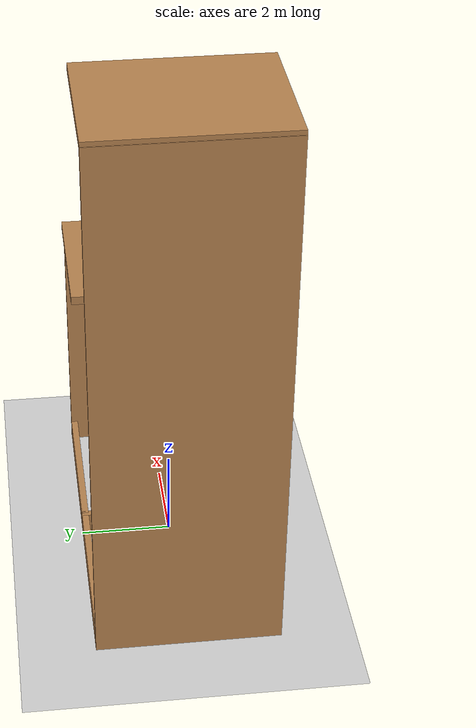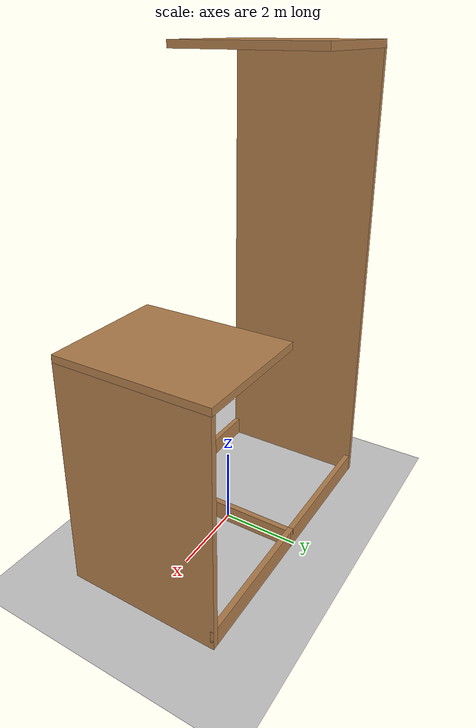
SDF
<sdf version="1.5">
 <world name="default">
  <include><uri>model://ground_plane</uri></include>
  <include><uri>model://asphalt_plane</uri></include>
  <include><uri>model://house</uri><pose>0 0 0 0 0 -1.57</pose></include>
  <include><pose>-2 0 11.9 0 1.57 0</pose><uri>model://cam_high</uri><static>1</static></include>
  <include><pose>2 0 5.9 0 1.57 0</pose><uri>model://cam_low</uri><static>1</static></include>
 </world>
</sdf>

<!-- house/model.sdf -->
<sdf version='1.6'>
  <model name='house'>
    <pose frame=''>-0.665617 0.435676 0 0 -0 0</pose>
    <link name='Wall_119'>
      <collision name='Wall_119_Collision'>
        <geometry>
          <box>
            <size>4.00047 0.15 6</size>
          </box>
        </geometry>
        <pose frame=''>0 0 3 0 -0 0</pose>
      </collision>
      <visual name='Wall_119_Visual'>
        <pose frame=''>0 0 3 0 -0 0</pose>
        <geometry>
          <box>
            <size>4.00047 0.15 6</size>
          </box>
        </geometry>
        <material>
          <script>
            <uri>file://media/materials/scripts/gazebo.material</uri>
            <name>Gazebo/Wood</name>
          </script>
          <ambient>1 1 1 1</ambient>
        </material>
        <meta>
          <layer>0</layer>
        </meta>
      </visual>
      <pose frame=''>-0.000383 3.72832 0 0 -0 0</pose>
    </link>
  <link name='Wall_43'>
      <pose frame=''>-0.036045 2.22823 0 0 -0 0.000117</pose>
      <self_collide>1</self_collide>
      <enable_wind>0</enable_wind>
      <kinematic>0</kinematic>
      <gravity>1</gravity>
      <inertial>
        <mass>0.33717</mass>
        <pose frame=''>0 0 0 0 -0 0</pose>
        <inertia>
          <ixx>0.289156</ixx>
          <ixy>0</ixy>
          <ixz>0</ixz>
          <iyy>0.450568</iyy>
          <iyz>0</iyz>
          <izz>0.737709</izz>
        </inertia>
      </inertial>
      <visual name='Wall_43_Visual'>
        <pose frame=''>0 0 6 0 -0 0</pose>
        <geometry>
          <box>
            <size>4 3.20239 0.189335</size>
          </box>
        </geometry>
        <material>
          <script>
            <uri>file://media/materials/scripts/gazebo.material</uri>
            <name>Gazebo/Wood</name>
          </script>
          <ambient>1 1 1 1</ambient>
          <shader type='vertex'>
            <normal_map>__default__</normal_map>
          </shader>
          <diffuse>1 1 1 1</diffuse>
          <specular>0.2 0.2 0.2 1</specular>
          <emissive>0 0 0 1</emissive>
        </material>
        <meta>
          <layer>0</layer>
        </meta>
        <transparency>0</transparency>
        <cast_shadows>1</cast_shadows>
      </visual>
      <collision name='Wall_43_Collision'>
        <laser_retro>0</laser_retro>
        <max_contacts>10</max_contacts>
        <pose frame=''>0 0 6 0 -0 0</pose>
        <geometry>
          <box>
            <size>4 3.20239 0.189335</size>
          </box>
        </geometry>
        <surface>
          <friction>
            <ode>
              <mu>1</mu>
              <mu2>1</mu2>
              <fdir1>0 0 0</fdir1>
              <slip1>0</slip1>
              <slip2>0</slip2>
            </ode>
            <torsional>
              <coefficient>1</coefficient>
              <patch_radius>0</patch_radius>
              <surface_radius>0</surface_radius>
              <use_patch_radius>1</use_patch_radius>
              <ode>
                <slip>0</slip>
              </ode>
            </torsional>
          </friction>
          <bounce>
            <restitution_coefficient>0</restitution_coefficient>
            <threshold>1e+06</threshold>
          </bounce>
          <contact>
            <collide_without_contact>0</collide_without_contact>
            <collide_without_contact_bitmask>1</collide_without_contact_bitmask>
            <collide_bitmask>1</collide_bitmask>
            <ode>
              <soft_cfm>0</soft_cfm>
              <soft_erp>0.2</soft_erp>
              <kp>1e+13</kp>
              <kd>1</kd>
              <max_vel>0.01</max_vel>
              <min_depth>0</min_depth>
            </ode>
            <bullet>
              <split_impulse>1</split_impulse>
              <split_impulse_penetration_threshold>-0.01</split_impulse_penetration_threshold>
              <soft_cfm>0</soft_cfm>
              <soft_erp>0.2</soft_erp>
              <kp>1e+13</kp>
              <kd>1</kd>
            </bullet>
          </contact>
        </surface>
      </collision>
    </link>
    <link name='Wall_23'>
      <collision name='Wall_23_Collision'>
        <geometry>
          <box>
            <size>4 0.15 12</size>
          </box>
        </geometry>
        <pose frame=''>0 0 6 0 -0 0</pose>
      </collision>
      <visual name='Wall_23_Visual'>
        <pose frame=''>0 0 6 0 -0 0</pose>
        <geometry>
          <box>
            <size>4 0.15 12</size>
          </box>
        </geometry>
        <material>
          <script>
            <uri>file://media/materials/scripts/gazebo.material</uri>
            <name>Gazebo/Wood</name>
          </script>
          <ambient>1 1 1 1</ambient>
        </material>
        <meta>
          <layer>0</layer>
        </meta>
      </visual>
      <pose frame=''>-0.000383 -3.72809 0 0 -0 0.000117</pose>
    </link>
    <link name='Wall_233'>
      <collision name='Wall_233_Collision'>
        <geometry>
           <box>
            <size>4 3.20239 0.189335</size>
          </box>
        </geometry>
        <pose frame=''>0 0 6 0 -0 0</pose>
      </collision>
      <visual name='Wall_233_Visual'>
        <pose frame=''>0 1.55 12 0 -0 0</pose>
        <geometry>
           <box>
            <size>4 3.20239 0.189335</size>
          </box>
        </geometry>
        <material>
          <script>
            <uri>file://media/materials/scripts/gazebo.material</uri>
            <name>Gazebo/Wood</name>
          </script>
          <ambient>1 1 1 1</ambient>
        </material>
        <meta>
          <layer>0</layer>
        </meta>
      </visual>
      <pose frame=''>-0.000383 -3.72809 0 0 -0 0.000117</pose>
    </link>

    <link name='Wall_28'>
      <collision name='Wall_28_Collision'>
        <geometry>
          <box>
            <size>3.75 0.15 0.5</size>
          </box>
        </geometry>
        <pose frame=''>0 0 0.25 0 -0 0</pose>
      </collision>
      <visual name='Wall_28_Visual'>
        <pose frame=''>0 0 0.25 0 -0 0</pose>
        <geometry>
          <box>
            <size>3.75 0.15 0.5</size>
          </box>
        </geometry>
        <material>
          <script>
            <uri>file://media/materials/scripts/gazebo.material</uri>
            <name>Gazebo/Wood</name>
          </script>
          <ambient>1 1 1 1</ambient>
        </material>
        <meta>
          <layer>0</layer>
        </meta>
      </visual>
      <pose frame=''>1.92462 1.86832 0 0 -0 -1.5708</pose>
    </link>
    <link name='Wall_38'>
      <collision name='Wall_38_Collision'>
        <geometry>
          <box>
            <size>4 0.15 0.5</size>
          </box>
        </geometry>
        <pose frame=''>0 0 0.25 0 -0 0</pose>
      </collision>
      <visual name='Wall_38_Visual'>
        <pose frame=''>0 0 0.25 0 -0 0</pose>
        <geometry>
          <box>
            <size>4 0.15 0.5</size>
          </box>
        </geometry>
        <material>
          <script>
            <uri>file://media/materials/scripts/gazebo.material</uri>
            <name>Gazebo/Wood</name>
          </script>
          <ambient>1 1 1 1</ambient>
        </material>
        <meta>
          <layer>0</layer>
        </meta>
      </visual>
      <pose frame=''>1.92562 -1.79568 0 0 -0 1.5708</pose>
    </link>
    <link name='Wall_49'>
      <collision name='Wall_49_Collision'>
        <geometry>
          <box>
            <size>3.99341 0.15 0.5</size>
          </box>
        </geometry>
        <pose frame=''>0 0 0.25 0 -0 0</pose>
      </collision>
      <visual name='Wall_49_Visual'>
        <pose frame=''>0 0 0.25 0 -0 0</pose>
        <geometry>
          <box>
            <size>3.99341 0.15 0.5</size>
          </box>
        </geometry>
        <material>
          <script>
            <uri>file://media/materials/scripts/gazebo.material</uri>
            <name>Gazebo/Wood</name>
          </script>
          <ambient>1 1 1 1</ambient>
        </material>
        <meta>
          <layer>0</layer>
        </meta>
      </visual>
      <pose frame=''>-1.92538 -1.79338 0 0 -0 1.5708</pose>
    </link>
    <link name='Wall_50'>
      <collision name='Wall_50_Collision'>
        <geometry>
          <box>
            <size>4 0.15 0.5</size>
          </box>
        </geometry>
        <pose frame=''>0 0 0.25 0 -0 0</pose>
      </collision>
      <visual name='Wall_50_Visual'>
        <pose frame=''>0 0 0.25 0 -0 0</pose>
        <geometry>
          <box>
            <size>4 0.15 0.5</size>
          </box>
        </geometry>
        <material>
          <script>
            <uri>file://media/materials/scripts/gazebo.material</uri>
            <name>Gazebo/Wood</name>
          </script>
          <ambient>1 1 1 1</ambient>
        </material>
        <meta>
          <layer>0</layer>
        </meta>
      </visual>
      <pose frame=''>-0.000383 0.128324 0 0 -0 0</pose>
    </link>
    <link name='Wall_52'>
      <collision name='Wall_52_Collision'>
        <geometry>
          <box>
            <size>3.75 0.15 0.5</size>
          </box>
        </geometry>
        <pose frame=''>0 0 0.25 0 -0 0</pose>
      </collision>
      <visual name='Wall_52_Visual'>
        <pose frame=''>0 0 0.25 0 -0 0</pose>
        <geometry>
          <box>
            <size>3.75 0.15 0.5</size>
          </box>
        </geometry>
        <material>
          <script>
            <uri>file://media/materials/scripts/gazebo.material</uri>
            <name>Gazebo/Wood</name>
          </script>
          <ambient>1 1 1 1</ambient>
        </material>
        <meta>
          <layer>0</layer>
        </meta>
      </visual>
      <pose frame=''>-1.92538 1.92832 0 0 -0 -1.5708</pose>
    </link>
    <static>1</static>
  </model>
</sdf>

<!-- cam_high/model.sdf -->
<sdf version="1.4">
  <model name="cam_high">
    <link name="sensors_link">
      <inertial>
        <pose>0.01 0.025 0.025 0 -0 0</pose>
        <mass>0.001</mass>
        <inertia>
          <ixx>4.15e-6</ixx>
          <ixy>0</ixy>
          <ixz>0</ixz>
          <iyy>2.407e-6</iyy>
          <iyz>0</iyz>
          <izz>2.407e-6</izz>
        </inertia>
      </inertial>
      <visual name="visual">
        <geometry>
          <box>
            <size>0.02 0.05 0.05</size>
          </box>
        </geometry>
      </visual>
      <sensor name="cam_high" type="camera">
        <camera>
          <horizontal_fov>0.45</horizontal_fov>
	        <vertical_fov>0.46</vertical_fov>
          <image>
            <width>640</width>
            <height>480</height>
          </image>
          <clip>
            <near>0.1</near>
            <far>14</far>
          </clip>
          <noise>
            <type>gaussian</type>
            <mean>0.0</mean>
            <stddev>0.005</stddev>
          </noise>
        </camera>
	<plugin name='camera_controller' filename='libgazebo_ros_camera.so'>
	    <robotNamespace>/</robotNamespace>
	    <cameraName>cam_high</cameraName>
            <imageTopicName>image_raw</imageTopicName>
            <cameraInfoTopicName>camera_info</cameraInfoTopicName>
	    <frameName>cam_high</frameName>
	</plugin>
        <always_on>1</always_on>
        <update_rate>60</update_rate>
        <visualize>true</visualize>
      </sensor>
    </link>
  </model>
</sdf>

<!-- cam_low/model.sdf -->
<sdf version="1.4">
  <model name="cam_low">
    <link name="sensors_link">
      <inertial>
        <pose>0.01 0.025 0.025 0 -0 0</pose>
        <mass>0.001</mass>
        <inertia>
          <ixx>4.15e-6</ixx>
          <ixy>0</ixy>
          <ixz>0</ixz>
          <iyy>2.407e-6</iyy>
          <iyz>0</iyz>
          <izz>2.407e-6</izz>
        </inertia>
      </inertial>
      <visual name="visual">
        <geometry>
          <box>
            <size>0.02 0.05 0.05</size>
          </box>
        </geometry>
      </visual>
      <sensor name="cam_low" type="camera">
        <camera>
          <horizontal_fov>0.8</horizontal_fov>
	        <vertical_fov>0.46</vertical_fov>
          <image>
            <width>640</width>
            <height>480</height>
          </image>
          <clip>
            <near>0.1</near>
            <far>14</far>
          </clip>
          <noise>
            <type>gaussian</type>
            <mean>0.0</mean>
            <stddev>0.005</stddev>
          </noise>
        </camera>
	<plugin name='camera_controller' filename='libgazebo_ros_camera.so'>
	    <robotNamespace>/</robotNamespace>
	    <cameraName>cam_low</cameraName>
            <imageTopicName>image_raw</imageTopicName>
            <cameraInfoTopicName>camera_info</cameraInfoTopicName>
	    <frameName>cam_low</frameName>
	</plugin>
        <always_on>1</always_on>
        <update_rate>60</update_rate>
        <visualize>true</visualize>
      </sensor>
    </link>
  </model>
</sdf>
